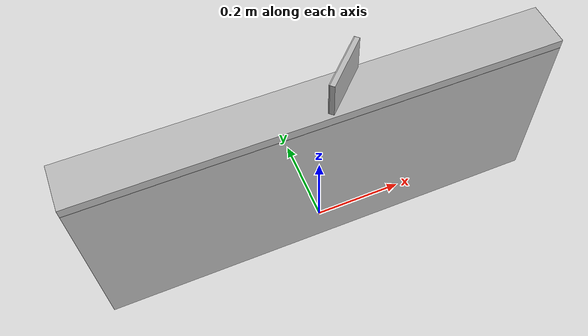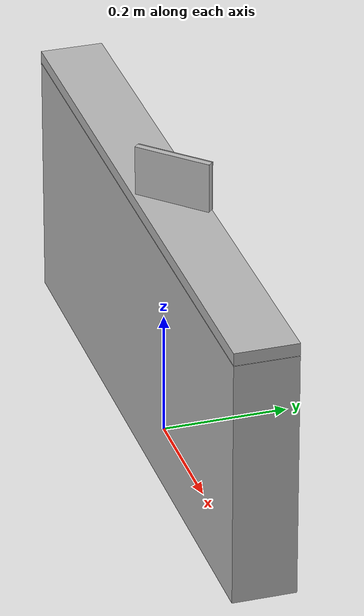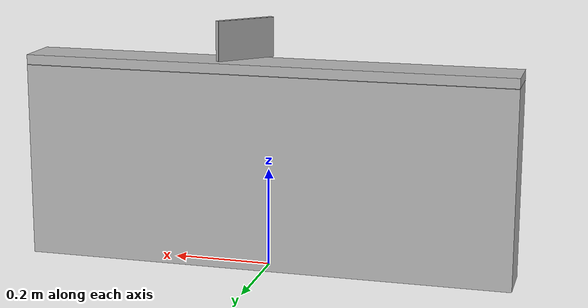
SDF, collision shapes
<?xml version="1.0" ?>
<sdf version="1.11">
  <model name="inspection_conveyor">
    <link name="conveyor_base">

      <visual name="base_visual">
        <pose>-0.5 -0.05 0.42 0 0 0</pose>
        <geometry>
          <mesh>
            <uri>model://inspection_conveyor/meshes/conveyor.glb</uri>
          </mesh>
        </geometry>
      </visual>

      <collision name="base_collision">
        <density>2700</density>
        <pose>0 0 0.2 0 0 0</pose>
        <geometry>
          <box>
            <size> 1 0.1 0.4 </size>
          </box>
        </geometry>
      </collision>

      <inertial auto="true"/>

    </link>

    <link name="conveyor_belt">
      <pose> 0 0 0.421 0 0 0 </pose>
      <collision name="belt_collision">
        <density>2700</density>
        <pose>0 0 -0.01 0 0 0</pose>
        <geometry>
          <box>
            <size> 1 0.1 0.02 </size>
          </box>
        </geometry>
      </collision>

      <inertial auto="true"/>

      <sensor name='contact_sensor' type='contact'>
        <update_rate>30</update_rate>
          <contact>
            <collision>belt_collision</collision>
          </contact>
      </sensor>

    </link>

    <link name="inspection_door">
      <pose> 0.05 0 0.425 0 0 -0.785 </pose>

      <collision name="collision">
        <density>2700</density>
        <pose>0 0 0.04 0 0 0</pose>
        <geometry>
          <box>
            <size> 0.01 0.125 0.08 </size>
          </box>
        </geometry>
      </collision>

      <visual name="visual">
        <pose>0 0 0.04 0 0 0</pose>
        <geometry>
          <mesh>
            <uri>model://inspection_conveyor/meshes/conveyor_door.glb</uri>
          </mesh>
        </geometry>
      </visual>

      <inertial auto="true"/>
    </link>

    <link name="inspection_door_belt">
      <pose relative_to="inspection_door">-0.006 0 0 0 0 0</pose>

      <collision name="collision">
        <pose>0 0 0.04 0 0 0</pose>
        <geometry>
          <box>
            <size> 0.002 0.125 0.08 </size>
          </box>
        </geometry>
      </collision>

    </link>

    <joint name="inspection_conveyor_to_world" type="fixed">
      <parent>world</parent>
      <child>conveyor_base</child>
    </joint>

    <joint name="belt_joint" type="prismatic">
      <parent>conveyor_base</parent>
      <child>conveyor_belt</child>
      <axis>
        <xyz>1 0 0</xyz>
        <limit>
         <lower>0</lower>
          <upper>0.05</upper>
          <effort>100</effort>
        </limit>
      </axis>
    </joint>

    <joint name="door_joint" type="revolute">
      <pose relative_to="inspection_door">0 -0.0625 0 0 0 0</pose>
      <parent>conveyor_base</parent>
      <child>inspection_door</child>
      <axis>
        <xyz>0 0 -1</xyz>
        <limit>
          <lower>0</lower>
          <upper>0.8</upper>
          <effort>1000</effort>
        </limit>
      </axis>
    </joint>

    <joint name="door_belt_joint" type="prismatic">
      <parent>inspection_door</parent>
      <child>inspection_door_belt</child>
      <axis>
        <xyz>0 1 0</xyz>
        <limit>
         <lower>0</lower>
          <upper>0.01</upper>
          <effort>100</effort>
        </limit>
      </axis>
    </joint>

    <link name="cell_feed_link">
      <pose> -0.45 0 0.421 0 0 0 </pose>
    </link>

    <joint name="cell_feed_joint" type="fixed">
      <parent>conveyor_base</parent>
      <child>cell_feed_link</child>
    </joint>

    <plugin
      filename="libLinearConveyorPlugin.so"
      name="ariac_plugins::LinearConveyorPlugin">
      <ros>
        <namespace>inspection_conveyor</namespace>
      </ros>
      <controllable>false</controllable>
      <joint_name>belt_joint</joint_name>
      <travel>0.01</travel>
      <can_malfunction>true</can_malfunction>
    </plugin>

    <plugin
      filename="libLinearConveyorPlugin.so"
      name="ariac_plugins::LinearConveyorPlugin">
      <ros>
        <namespace>inspection_conveyor/door</namespace>
      </ros>
      <controllable>false</controllable>
      <joint_name>door_belt_joint</joint_name>
      <travel>0.005</travel>
    </plugin>

    <plugin
      filename="libCellFeedPlugin.so"
      name="ariac_plugins::CellFeedPlugin">
      <ros>
        <namespace>inspection_conveyor/cell_feed</namespace>
      </ros>
    </plugin>

    <plugin
      filename="libPhysicalInspectionPlugin.so"
      name="ariac_plugins::PhysicalInspectionPlugin">
      <ros>
        <namespace>inspection_conveyor/inspection</namespace>
      </ros>
      <joint_name>door_joint</joint_name>
      <max_speed>4.0</max_speed>
    </plugin>

    <plugin
      filename="libTFPublisherPlugin.so"
      name="ariac_plugins::TFPublisherPlugin">
      <base_link>conveyor_base</base_link>
      <static>true</static>
      <child link="cell_feed_link" frame="cell_feed_frame"/>
    </plugin>

  </model>

</sdf>
